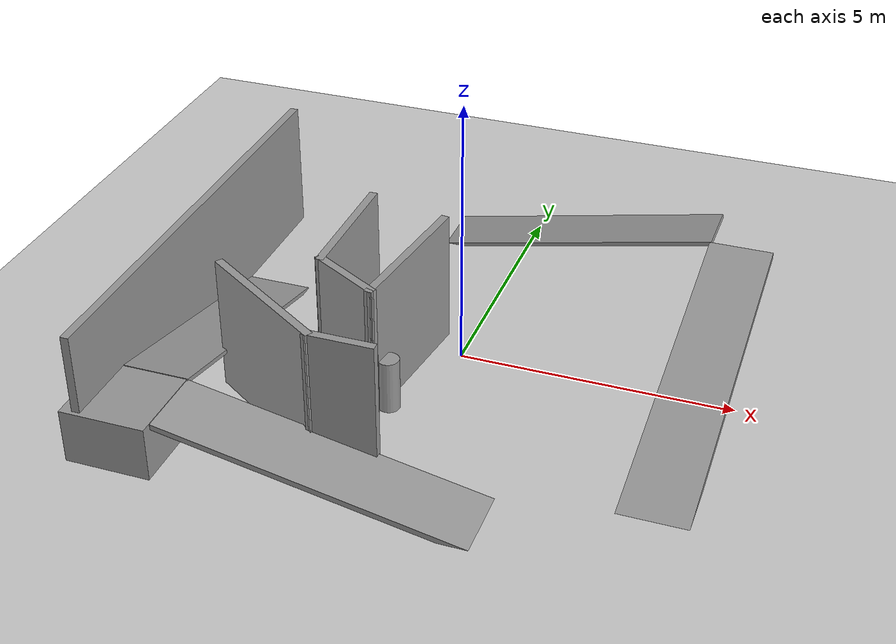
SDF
<sdf version="1.7">
 <world name="default">
  <model name="ground_plane">
   <static>1</static>
   <link name="link">
    <collision name="collision">
     <geometry><plane><normal>0 0 1</normal><size>100 100</size></plane></geometry>
     <surface>
      <contact><collide_bitmask>65535</collide_bitmask></contact>
      <friction><ode><mu>100</mu><mu2>50</mu2></ode></friction>
     </surface>
    </collision>
    <visual name="visual">
     <cast_shadows>0</cast_shadows>
     <geometry><plane><normal>0 0 1</normal><size>100 100</size></plane></geometry>
     <material>
      <script><uri>file://media/materials/scripts/gazebo.material</uri><name>Gazebo/Grey</name></script>
     </material>
    </visual>
   </link>
  </model>
  <model name="map10x10">
   <pose>0.061304 -0.054192 0 0 -0 0</pose>
   <link name="Wall_27">
    <collision name="Wall_27_Collision">
     <geometry><box><size>8.75 0.15 2.5</size></box></geometry>
     <pose>0 0 1.25 0 -0 0</pose>
    </collision>
    <visual name="Wall_27_Visual">
     <pose>0 0 1.25 0 -0 0</pose>
     <geometry><box><size>8.75 0.15 2.5</size></box></geometry>
     <material>
      <script><uri>file://media/materials/scripts/gazebo.material</uri><name>Gazebo/Grey</name></script>
      <ambient>1 1 1 1</ambient>
     </material>
     <meta><layer>0</layer></meta>
    </visual>
    <pose>-4.925 -0.625 0 0 -0 1.5708</pose>
   </link>
   <link name="Wall_35">
    <collision name="Wall_35_Collision">
     <geometry><box><size>2.82238 0.15 2.5</size></box></geometry>
     <pose>0 0 1.25 0 -0 0</pose>
    </collision>
    <visual name="Wall_35_Visual">
     <pose>0 0 1.25 0 -0 0</pose>
     <geometry><box><size>2.82238 0.15 2.5</size></box></geometry>
     <material>
      <script><uri>file://media/materials/scripts/gazebo.material</uri><name>Gazebo/Grey</name></script>
      <ambient>1 1 1 1</ambient>
     </material>
     <meta><layer>0</layer></meta>
    </visual>
    <pose>-2.53005 -2.83932 0 0 -0 -0.584164</pose>
   </link>
   <link name="Wall_36">
    <collision name="Wall_36_Collision">
     <geometry><box><size>1.25 0.15 2.5</size></box></geometry>
     <pose>0 0 1.25 0 -0 0</pose>
    </collision>
    <visual name="Wall_36_Visual">
     <pose>0 0 1.25 0 -0 0</pose>
     <geometry><box><size>1.25 0.15 2.5</size></box></geometry>
     <material>
      <script><uri>file://media/materials/scripts/gazebo.material</uri><name>Gazebo/Grey</name></script>
      <ambient>1 1 1 1</ambient>
     </material>
     <meta><layer>0</layer></meta>
    </visual>
    <pose>-0.865434 -3.57623 0 0 -0 0</pose>
   </link>
   <link name="Wall_62">
    <collision name="Wall_62_Collision">
     <geometry><box><size>2.5 0.15 2.5</size></box></geometry>
     <pose>0 0 1.25 0 -0 0</pose>
    </collision>
    <visual name="Wall_62_Visual">
     <pose>0 0 1.25 0 -0 0</pose>
     <geometry><box><size>2.5 0.15 2.5</size></box></geometry>
     <material>
      <script><uri>file://media/materials/scripts/gazebo.material</uri><name>Gazebo/Grey</name></script>
      <ambient>1 1 1 1</ambient>
     </material>
     <meta><layer>0</layer></meta>
    </visual>
    <pose>-2.11328 -0.220503 0 0 -0 -1.5708</pose>
   </link>
   <link name="Wall_63">
    <collision name="Wall_63_Collision">
     <geometry><box><size>1.5 0.15 2.5</size></box></geometry>
     <pose>0 0 1.25 0 -0 0</pose>
    </collision>
    <visual name="Wall_63_Visual">
     <pose>0 0 1.25 0 -0 0</pose>
     <geometry><box><size>1.5 0.15 2.5</size></box></geometry>
     <material>
      <script><uri>file://media/materials/scripts/gazebo.material</uri><name>Gazebo/Grey</name></script>
      <ambient>1 1 1 1</ambient>
     </material>
     <meta><layer>0</layer></meta>
    </visual>
    <pose>-1.52871 -1.733 0 0 -0 -0.523599</pose>
   </link>
   <link name="Wall_64">
    <collision name="Wall_64_Collision">
     <geometry><box><size>2.8226 0.15 2.5</size></box></geometry>
     <pose>0 0 1.25 0 -0 0</pose>
    </collision>
    <visual name="Wall_64_Visual">
     <pose>0 0 1.25 0 -0 0</pose>
     <geometry><box><size>2.8226 0.15 2.5</size></box></geometry>
     <material>
      <script><uri>file://media/materials/scripts/gazebo.material</uri><name>Gazebo/Grey</name></script>
      <ambient>1 1 1 1</ambient>
     </material>
     <meta><layer>0</layer></meta>
    </visual>
    <pose>-0.770983 -0.745467 0 0 -0 1.44085</pose>
   </link>
   <static>1</static>
  </model>
  <model name="boxstair1">
   <link name="link">
    <inertial>
     <mass>1</mass>
     <inertia>
      <ixx>0.166667</ixx>
      <ixy>0</ixy>
      <ixz>0</ixz>
      <iyy>0.166667</iyy>
      <iyz>0</iyz>
      <izz>0.166667</izz>
     </inertia>
    </inertial>
    <visual name="visual">
     <geometry><box><size>1.55 1.55 1</size></box></geometry>
     <material>
      <script><name>Gazebo/Grey</name><uri>file://media/materials/scripts/gazebo.material</uri></script>
      <shader type="pixel"><normal_map>__default__</normal_map></shader>
      <ambient>0.3 0.3 0.3 1</ambient>
      <diffuse>0.7 0.7 0.7 1</diffuse>
      <specular>0.01 0.01 0.01 1</specular>
      <emissive>0 0 0 1</emissive>
     </material>
    </visual>
    <collision name="collision">
     <geometry><box><size>1.55 1.55 1</size></box></geometry>
     <surface>
      <friction>
       <ode><mu>1</mu><mu2>1</mu2><fdir1>0 0 0</fdir1><slip1>0</slip1><slip2>0</slip2></ode>
       <torsional>
        <coefficient>1</coefficient>
        <patch_radius>0</patch_radius>
        <surface_radius>0</surface_radius>
        <use_patch_radius>1</use_patch_radius>
        <ode><slip>0</slip></ode>
       </torsional>
      </friction>
      <bounce><restitution_coefficient>0</restitution_coefficient><threshold>1e+06</threshold></bounce>
      <contact>
       <collide_without_contact>0</collide_without_contact>
       <collide_without_contact_bitmask>1</collide_without_contact_bitmask>
       <collide_bitmask>1</collide_bitmask>
       <ode>
        <soft_cfm>0</soft_cfm>
        <soft_erp>0.2</soft_erp>
        <kp>1e+13</kp>
        <kd>1</kd>
        <max_vel>0.01</max_vel>
        <min_depth>0</min_depth>
       </ode>
       <bullet>
        <split_impulse>1</split_impulse>
        <split_impulse_penetration_threshold>-0.01</split_impulse_penetration_threshold>
        <soft_cfm>0</soft_cfm>
        <soft_erp>0.2</soft_erp>
        <kp>1e+13</kp>
        <kd>1</kd>
       </bullet>
      </contact>
     </surface>
    </collision>
   </link>
   <static>1</static>
   <pose>-4.36885 -4.35438 0.552473 0 -0 0</pose>
  </model>
  <model name="obstacle1_clone_0">
   <link name="link">
    <inertial>
     <mass>1</mass>
     <inertia><ixx>0.145833</ixx><ixy>0</ixy><ixz>0</ixz><iyy>0.145833</iyy><iyz>0</iyz><izz>0.125</izz></inertia>
    </inertial>
    <visual name="visual">
     <geometry><cylinder><radius>0.2</radius><length>1</length></cylinder></geometry>
     <material>
      <script><name>Gazebo/Grey</name><uri>file://media/materials/scripts/gazebo.material</uri></script>
      <shader type="pixel"><normal_map>__default__</normal_map></shader>
      <ambient>0.3 0.3 0.3 1</ambient>
      <diffuse>0.7 0.7 0.7 1</diffuse>
      <specular>0.01 0.01 0.01 1</specular>
      <emissive>0 0 0 1</emissive>
     </material>
    </visual>
    <collision name="collision">
     <geometry><cylinder><radius>0.2</radius><length>1</length></cylinder></geometry>
     <surface>
      <friction>
       <ode><mu>1</mu><mu2>1</mu2><fdir1>0 0 0</fdir1><slip1>0</slip1><slip2>0</slip2></ode>
       <torsional>
        <coefficient>1</coefficient>
        <patch_radius>0</patch_radius>
        <surface_radius>0</surface_radius>
        <use_patch_radius>1</use_patch_radius>
        <ode><slip>0</slip></ode>
       </torsional>
      </friction>
      <bounce><restitution_coefficient>0</restitution_coefficient><threshold>1e+06</threshold></bounce>
      <contact>
       <collide_without_contact>0</collide_without_contact>
       <collide_without_contact_bitmask>1</collide_without_contact_bitmask>
       <collide_bitmask>1</collide_bitmask>
       <ode>
        <soft_cfm>0</soft_cfm>
        <soft_erp>0.2</soft_erp>
        <kp>1e+13</kp>
        <kd>1</kd>
        <max_vel>0.01</max_vel>
        <min_depth>0</min_depth>
       </ode>
       <bullet>
        <split_impulse>1</split_impulse>
        <split_impulse_penetration_threshold>-0.01</split_impulse_penetration_threshold>
        <soft_cfm>0</soft_cfm>
        <soft_erp>0.2</soft_erp>
        <kp>1e+13</kp>
        <kd>1</kd>
       </bullet>
      </contact>
     </surface>
    </collision>
   </link>
   <static>1</static>
   <pose>-0.688142 -1.87561 0.5 0 -0 0</pose>
  </model>
  <model name="obstacle2_clone">
   <link name="link">
    <inertial>
     <mass>1</mass>
     <inertia><ixx>0.1</ixx><ixy>0</ixy><ixz>0</ixz><iyy>0.1</iyy><iyz>0</iyz><izz>0.1</izz></inertia>
    </inertial>
    <visual name="visual">
     <geometry><sphere><radius>0.3</radius></sphere></geometry>
     <material>
      <script><name>Gazebo/Grey</name><uri>file://media/materials/scripts/gazebo.material</uri></script>
      <shader type="pixel"><normal_map>__default__</normal_map></shader>
      <ambient>0.3 0.3 0.3 1</ambient>
      <diffuse>0.7 0.7 0.7 1</diffuse>
      <specular>0.01 0.01 0.01 1</specular>
      <emissive>0 0 0 1</emissive>
     </material>
    </visual>
    <collision name="collision">
     <geometry><sphere><radius>0.3</radius></sphere></geometry>
     <surface>
      <friction>
       <ode><mu>1</mu><mu2>1</mu2><fdir1>0 0 0</fdir1><slip1>0</slip1><slip2>0</slip2></ode>
       <torsional>
        <coefficient>1</coefficient>
        <patch_radius>0</patch_radius>
        <surface_radius>0</surface_radius>
        <use_patch_radius>1</use_patch_radius>
        <ode><slip>0</slip></ode>
       </torsional>
      </friction>
      <bounce><restitution_coefficient>0</restitution_coefficient><threshold>1e+06</threshold></bounce>
      <contact>
       <collide_without_contact>0</collide_without_contact>
       <collide_without_contact_bitmask>1</collide_without_contact_bitmask>
       <collide_bitmask>1</collide_bitmask>
       <ode>
        <soft_cfm>0</soft_cfm>
        <soft_erp>0.2</soft_erp>
        <kp>1e+13</kp>
        <kd>1</kd>
        <max_vel>0.01</max_vel>
        <min_depth>0</min_depth>
       </ode>
       <bullet>
        <split_impulse>1</split_impulse>
        <split_impulse_penetration_threshold>-0.01</split_impulse_penetration_threshold>
        <soft_cfm>0</soft_cfm>
        <soft_erp>0.2</soft_erp>
        <kp>1e+13</kp>
        <kd>1</kd>
       </bullet>
      </contact>
     </surface>
    </collision>
   </link>
   <static>1</static>
   <pose>-3.32144 -2.02069 0.5 0 -0 0</pose>
  </model>
  <model name="Untitled">
   <link name="link_0">
    <inertial>
     <mass>0.505184</mass>
     <inertia>
      <ixx>0.0561305</ixx>
      <ixy>0</ixy>
      <ixz>0</ixz>
      <iyy>1.29554</iyy>
      <iyz>0</iyz>
      <izz>1.35114</izz>
     </inertia>
    </inertial>
    <pose>0.983026 4.49156 -0.007109 0 -0.196998 0</pose>
    <kinematic>1</kinematic>
    <visual name="visual">
     <geometry><box><size>5.54686 1.15198 0.07906</size></box></geometry>
     <material>
      <lighting>1</lighting>
      <script><uri>file://media/materials/scripts/gazebo.material</uri><name>Gazebo/Grey</name></script>
      <shader type="pixel"><normal_map>__default__</normal_map></shader>
     </material>
    </visual>
    <collision name="collision">
     <geometry><box><size>5.54686 1.15198 0.07906</size></box></geometry>
     <surface>
      <friction>
       <ode><mu>1</mu><mu2>1</mu2><fdir1>0 0 0</fdir1><slip1>0</slip1><slip2>0</slip2></ode>
       <torsional>
        <coefficient>1</coefficient>
        <patch_radius>0</patch_radius>
        <surface_radius>0</surface_radius>
        <use_patch_radius>1</use_patch_radius>
        <ode><slip>0</slip></ode>
       </torsional>
      </friction>
      <bounce><restitution_coefficient>0</restitution_coefficient><threshold>1e+06</threshold></bounce>
      <contact>
       <collide_without_contact>0</collide_without_contact>
       <collide_without_contact_bitmask>1</collide_without_contact_bitmask>
       <collide_bitmask>1</collide_bitmask>
       <ode>
        <soft_cfm>0</soft_cfm>
        <soft_erp>0.2</soft_erp>
        <kp>1e+13</kp>
        <kd>1</kd>
        <max_vel>0.01</max_vel>
        <min_depth>0</min_depth>
       </ode>
       <bullet>
        <split_impulse>1</split_impulse>
        <split_impulse_penetration_threshold>-0.01</split_impulse_penetration_threshold>
        <soft_cfm>0</soft_cfm>
        <soft_erp>0.2</soft_erp>
        <kp>1e+13</kp>
        <kd>1</kd>
       </bullet>
      </contact>
     </surface>
    </collision>
   </link>
   <link name="link_0_0">
    <inertial>
     <mass>1.23291</mass>
     <inertia><ixx>5.69183</ixx><ixy>0</ixy><ixz>0</ixz><iyy>0.152692</iyy><iyz>0</iyz><izz>5.84069</izz></inertia>
    </inertial>
    <pose>4.27195 0.253561 -0.052235 0.149156 -0 0</pose>
    <self_collide>1</self_collide>
    <kinematic>1</kinematic>
    <visual name="visual">
     <geometry><box><size>1.2114 7.4418 0.136707</size></box></geometry>
     <material>
      <lighting>1</lighting>
      <script><uri>file://media/materials/scripts/gazebo.material</uri><name>Gazebo/Grey</name></script>
      <shader type="pixel"><normal_map>__default__</normal_map></shader>
     </material>
    </visual>
    <collision name="collision">
     <geometry><box><size>1.2114 7.4418 0.136707</size></box></geometry>
     <surface>
      <friction>
       <ode><mu>1</mu><mu2>1</mu2><fdir1>0 0 0</fdir1><slip1>0</slip1><slip2>0</slip2></ode>
       <torsional>
        <coefficient>1</coefficient>
        <patch_radius>0</patch_radius>
        <surface_radius>0</surface_radius>
        <use_patch_radius>1</use_patch_radius>
        <ode><slip>0</slip></ode>
       </torsional>
      </friction>
      <bounce><restitution_coefficient>0</restitution_coefficient><threshold>1e+06</threshold></bounce>
      <contact>
       <collide_without_contact>0</collide_without_contact>
       <collide_without_contact_bitmask>1</collide_without_contact_bitmask>
       <collide_bitmask>1</collide_bitmask>
       <ode>
        <soft_cfm>0</soft_cfm>
        <soft_erp>0.2</soft_erp>
        <kp>1e+13</kp>
        <kd>1</kd>
        <max_vel>0.01</max_vel>
        <min_depth>0</min_depth>
       </ode>
       <bullet>
        <split_impulse>1</split_impulse>
        <split_impulse_penetration_threshold>-0.01</split_impulse_penetration_threshold>
        <soft_cfm>0</soft_cfm>
        <soft_erp>0.2</soft_erp>
        <kp>1e+13</kp>
        <kd>1</kd>
       </bullet>
      </contact>
     </surface>
    </collision>
   </link>
   <link name="link_2">
    <inertial>
     <mass>0.527062</mass>
     <inertia>
      <ixx>1.06673</ixx>
      <ixy>0</ixy>
      <ixz>0</ixz>
      <iyy>0.0822286</iyy>
      <iyz>0</iyz>
      <izz>1.14842</izz>
     </inertia>
    </inertial>
    <pose>-4.29568 -1.06986 0.019696 -0.215301 0 0</pose>
    <kinematic>1</kinematic>
    <visual name="visual">
     <geometry><box><size>1.36603 4.92755 0.078305</size></box></geometry>
     <material>
      <lighting>1</lighting>
      <script><uri>file://media/materials/scripts/gazebo.material</uri><name>Gazebo/Grey</name></script>
      <shader type="pixel"><normal_map>__default__</normal_map></shader>
     </material>
    </visual>
    <collision name="collision">
     <geometry><box><size>1.36603 4.92755 0.078305</size></box></geometry>
     <surface>
      <friction>
       <ode><mu>1</mu><mu2>1</mu2><fdir1>0 0 0</fdir1><slip1>0</slip1><slip2>0</slip2></ode>
       <torsional>
        <coefficient>1</coefficient>
        <patch_radius>0</patch_radius>
        <surface_radius>0</surface_radius>
        <use_patch_radius>1</use_patch_radius>
        <ode><slip>0</slip></ode>
       </torsional>
      </friction>
      <bounce><restitution_coefficient>0</restitution_coefficient><threshold>1e+06</threshold></bounce>
      <contact>
       <collide_without_contact>0</collide_without_contact>
       <collide_without_contact_bitmask>1</collide_without_contact_bitmask>
       <collide_bitmask>1</collide_bitmask>
       <ode>
        <soft_cfm>0</soft_cfm>
        <soft_erp>0.2</soft_erp>
        <kp>1e+13</kp>
        <kd>1</kd>
        <max_vel>0.01</max_vel>
        <min_depth>0</min_depth>
       </ode>
       <bullet>
        <split_impulse>1</split_impulse>
        <split_impulse_penetration_threshold>-0.01</split_impulse_penetration_threshold>
        <soft_cfm>0</soft_cfm>
        <soft_erp>0.2</soft_erp>
        <kp>1e+13</kp>
        <kd>1</kd>
       </bullet>
      </contact>
     </surface>
    </collision>
   </link>
   <link name="link_3">
    <inertial>
     <mass>0.73459</mass>
     <inertia><ixx>0.106693</ixx><ixy>0</ixy><ixz>0</ixz><iyy>1.88061</iyy><iyz>0</iyz><izz>1.98606</izz></inertia>
    </inertial>
    <pose>-0.960779 -4.10674 -0.014891 3.14159 -0.192362 3.14159</pose>
    <kinematic>1</kinematic>
    <visual name="visual">
     <geometry><box><size>5.54174 1.31634 0.100684</size></box></geometry>
     <material>
      <lighting>1</lighting>
      <script><uri>file://media/materials/scripts/gazebo.material</uri><name>Gazebo/Grey</name></script>
      <shader type="pixel"><normal_map>__default__</normal_map></shader>
     </material>
    </visual>
    <collision name="collision">
     <geometry><box><size>5.54174 1.31634 0.100684</size></box></geometry>
     <surface>
      <friction>
       <ode><mu>1</mu><mu2>1</mu2><fdir1>0 0 0</fdir1><slip1>0</slip1><slip2>0</slip2></ode>
       <torsional>
        <coefficient>1</coefficient>
        <patch_radius>0</patch_radius>
        <surface_radius>0</surface_radius>
        <use_patch_radius>1</use_patch_radius>
        <ode><slip>0</slip></ode>
       </torsional>
      </friction>
      <bounce><restitution_coefficient>0</restitution_coefficient><threshold>1e+06</threshold></bounce>
      <contact>
       <collide_without_contact>0</collide_without_contact>
       <collide_without_contact_bitmask>1</collide_without_contact_bitmask>
       <collide_bitmask>1</collide_bitmask>
       <ode>
        <soft_cfm>0</soft_cfm>
        <soft_erp>0.2</soft_erp>
        <kp>1e+13</kp>
        <kd>1</kd>
        <max_vel>0.01</max_vel>
        <min_depth>0</min_depth>
       </ode>
       <bullet>
        <split_impulse>1</split_impulse>
        <split_impulse_penetration_threshold>-0.01</split_impulse_penetration_threshold>
        <soft_cfm>0</soft_cfm>
        <soft_erp>0.2</soft_erp>
        <kp>1e+13</kp>
        <kd>1</kd>
       </bullet>
      </contact>
     </surface>
    </collision>
   </link>
   <static>0</static>
   <pose>0.041464 -0.16344 0.480304 0 -0 0</pose>
  </model>
 </world>
</sdf>
